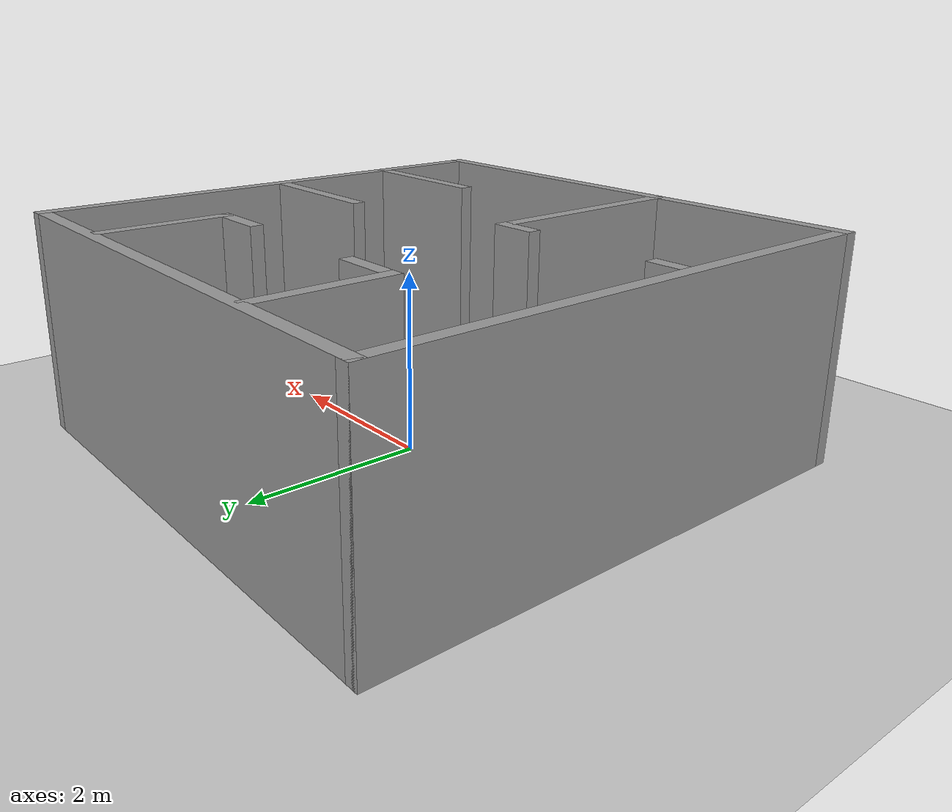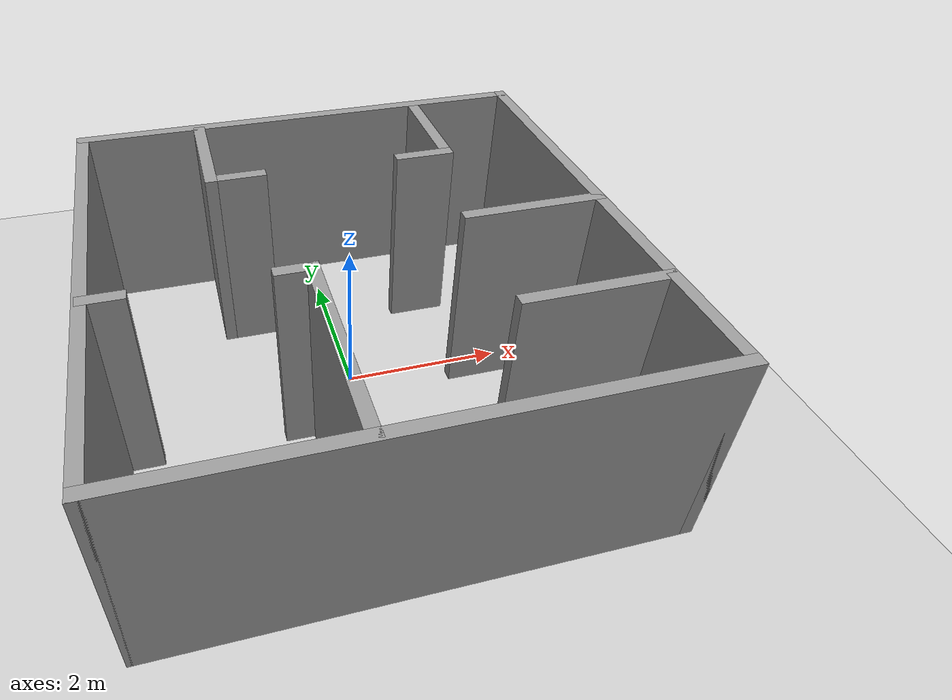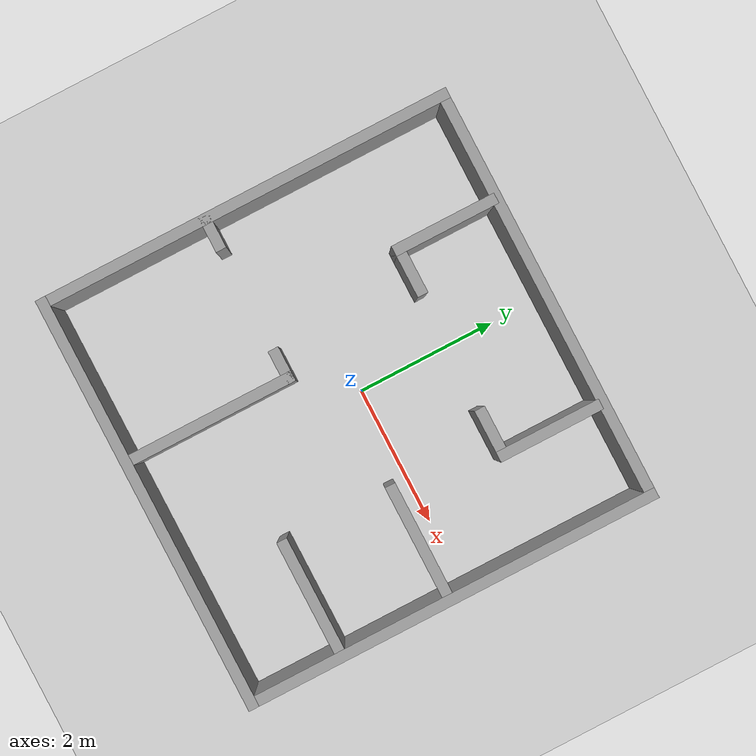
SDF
<sdf version="1.7">
 <world name="default">
  <light name="sun" type="directional">
   <pose>0 0 10 0 -0 0</pose>
   <diffuse>0.8 0.8 0.8 1</diffuse>
   <specular>0.2 0.2 0.2 1</specular>
   <attenuation>
    <range>1000</range>
    <constant>0.9</constant>
    <linear>0.01</linear>
    <quadratic>0.001</quadratic>
   </attenuation>
   <direction>-0.5 0.1 -0.9</direction>
   <spot><inner_angle>0</inner_angle><outer_angle>0</outer_angle><falloff>0</falloff></spot>
  </light>
  <model name="ground_plane">
   <static>1</static>
   <link name="link">
    <collision name="collision">
     <geometry><plane><normal>0 0 1</normal><size>100 100</size></plane></geometry>
     <surface>
      <contact><collide_bitmask>65535</collide_bitmask></contact>
      <friction><ode><mu>100</mu><mu2>50</mu2></ode></friction>
     </surface>
    </collision>
    <visual name="visual">
     <cast_shadows>0</cast_shadows>
     <geometry><plane><normal>0 0 1</normal><size>100 100</size></plane></geometry>
     <material>
      <script><uri>file://media/materials/scripts/gazebo.material</uri><name>Gazebo/Grey</name></script>
     </material>
    </visual>
   </link>
  </model>
  <gravity>0 0 -9.8</gravity>
  <magnetic_field>6e-06 2.3e-05 -4.2e-05</magnetic_field>
  <atmosphere type="adiabatic"/>
  <physics type="ode">
   <max_step_size>0.001</max_step_size>
   <real_time_factor>1</real_time_factor>
   <real_time_update_rate>1000</real_time_update_rate>
  </physics>
  <scene><ambient>0.4 0.4 0.4 1</ambient><background>0.7 0.7 0.7 1</background><shadows>1</shadows></scene>
  <spherical_coordinates>
   <surface_model>EARTH_WGS84</surface_model>
   <latitude_deg>0</latitude_deg>
   <longitude_deg>0</longitude_deg>
   <elevation>0</elevation>
   <heading_deg>0</heading_deg>
  </spherical_coordinates>
  <model name="meze7">
   <pose>0.01284 -0.226206 0 0 -0 0</pose>
   <link name="Wall_0">
    <collision name="Wall_0_Collision">
     <geometry><box><size>6 0.15 2.5</size></box></geometry>
     <pose>0 0 1.25 0 -0 0</pose>
    </collision>
    <visual name="Wall_0_Visual">
     <pose>0 0 1.25 0 -0 0</pose>
     <geometry><box><size>6 0.15 2.5</size></box></geometry>
     <material>
      <script><uri>file://media/materials/scripts/gazebo.material</uri><name>Gazebo/Grey</name></script>
      <ambient>1 1 1 1</ambient>
     </material>
     <meta><layer>0</layer></meta>
    </visual>
    <pose>0 -2.925 0 0 -0 0</pose>
   </link>
   <link name="Wall_1">
    <collision name="Wall_1_Collision">
     <geometry><box><size>6 0.15 2.5</size></box></geometry>
     <pose>0 0 1.25 0 -0 0</pose>
    </collision>
    <visual name="Wall_1_Visual">
     <pose>0 0 1.25 0 -0 0</pose>
     <geometry><box><size>6 0.15 2.5</size></box></geometry>
     <material>
      <script><uri>file://media/materials/scripts/gazebo.material</uri><name>Gazebo/Grey</name></script>
      <ambient>1 1 1 1</ambient>
     </material>
     <meta><layer>0</layer></meta>
    </visual>
    <pose>2.925 0 0 0 -0 1.5708</pose>
   </link>
   <link name="Wall_11">
    <collision name="Wall_11_Collision">
     <geometry><box><size>1.75 0.15 2.5</size></box></geometry>
     <pose>0 0 1.25 0 -0 0</pose>
    </collision>
    <visual name="Wall_11_Visual">
     <pose>0 0 1.25 0 -0 0</pose>
     <geometry><box><size>1.75 0.15 2.5</size></box></geometry>
     <material>
      <script><uri>file://media/materials/scripts/gazebo.material</uri><name>Gazebo/Grey</name></script>
      <ambient>1 1 1 1</ambient>
     </material>
     <meta><layer>0</layer></meta>
    </visual>
    <pose>2.11768 -0.023746 0 0 -0 0</pose>
   </link>
   <link name="Wall_13">
    <collision name="Wall_13_Collision">
     <geometry><box><size>1.75 0.15 2.5</size></box></geometry>
     <pose>0 0 1.25 0 -0 0</pose>
    </collision>
    <visual name="Wall_13_Visual">
     <pose>0 0 1.25 0 -0 0</pose>
     <geometry><box><size>1.75 0.15 2.5</size></box></geometry>
     <material>
      <script><uri>file://media/materials/scripts/gazebo.material</uri><name>Gazebo/Grey</name></script>
      <ambient>1 1 1 1</ambient>
     </material>
     <meta><layer>0</layer></meta>
    </visual>
    <pose>2.10348 -1.60106 0 0 -0 0</pose>
   </link>
   <link name="Wall_16">
    <collision name="Wall_16_Collision">
     <geometry><box><size>1.5 0.15 2.5</size></box></geometry>
     <pose>0 0 1.25 0 -0 0</pose>
    </collision>
    <visual name="Wall_16_Visual">
     <pose>0 0 1.25 0 -0 0</pose>
     <geometry><box><size>1.5 0.15 2.5</size></box></geometry>
     <material>
      <script><uri>file://media/materials/scripts/gazebo.material</uri><name>Gazebo/Grey</name></script>
      <ambient>1 1 1 1</ambient>
     </material>
     <meta><layer>0</layer></meta>
    </visual>
    <pose>-1.42131 2.17221 0 0 -0 -1.5708</pose>
   </link>
   <link name="Wall_18">
    <collision name="Wall_18_Collision">
     <geometry><box><size>1.5 0.15 2.5</size></box></geometry>
     <pose>0 0 1.25 0 -0 0</pose>
    </collision>
    <visual name="Wall_18_Visual">
     <pose>0 0 1.25 0 -0 0</pose>
     <geometry><box><size>1.5 0.15 2.5</size></box></geometry>
     <material>
      <script><uri>file://media/materials/scripts/gazebo.material</uri><name>Gazebo/Grey</name></script>
      <ambient>1 1 1 1</ambient>
     </material>
     <meta><layer>0</layer></meta>
    </visual>
    <pose>1.57336 2.14086 0 0 -0 -1.5708</pose>
   </link>
   <link name="Wall_20">
    <collision name="Wall_20_Collision">
     <geometry><box><size>0.75 0.15 2.5</size></box></geometry>
     <pose>0 0 1.25 0 -0 0</pose>
    </collision>
    <visual name="Wall_20_Visual">
     <pose>0 0 1.25 0 -0 0</pose>
     <geometry><box><size>0.75 0.15 2.5</size></box></geometry>
     <material>
      <script><uri>file://media/materials/scripts/gazebo.material</uri><name>Gazebo/Grey</name></script>
      <ambient>1 1 1 1</ambient>
     </material>
     <meta><layer>0</layer></meta>
    </visual>
    <pose>-1.12131 1.49721 0 0 -0 0</pose>
   </link>
   <link name="Wall_22">
    <collision name="Wall_22_Collision">
     <geometry><box><size>0.75 0.15 2.5</size></box></geometry>
     <pose>0 0 1.25 0 -0 0</pose>
    </collision>
    <visual name="Wall_22_Visual">
     <pose>0 0 1.25 0 -0 0</pose>
     <geometry><box><size>0.75 0.15 2.5</size></box></geometry>
     <material>
      <script><uri>file://media/materials/scripts/gazebo.material</uri><name>Gazebo/Grey</name></script>
      <ambient>1 1 1 1</ambient>
     </material>
     <meta><layer>0</layer></meta>
    </visual>
    <pose>1.27336 1.46586 0 0 -0 3.14159</pose>
   </link>
   <link name="Wall_3">
    <collision name="Wall_3_Collision">
     <geometry><box><size>6 0.15 2.5</size></box></geometry>
     <pose>0 0 1.25 0 -0 0</pose>
    </collision>
    <visual name="Wall_3_Visual">
     <pose>0 0 1.25 0 -0 0</pose>
     <geometry><box><size>6 0.15 2.5</size></box></geometry>
     <material>
      <script><uri>file://media/materials/scripts/gazebo.material</uri><name>Gazebo/Grey</name></script>
      <ambient>1 1 1 1</ambient>
     </material>
     <meta><layer>0</layer></meta>
    </visual>
    <pose>-2.925 0 0 0 -0 1.5708</pose>
   </link>
   <link name="Wall_4">
    <collision name="Wall_4_Collision">
     <geometry><box><size>6 0.15 2.5</size></box></geometry>
     <pose>0 0 1.25 0 -0 0</pose>
    </collision>
    <visual name="Wall_4_Visual">
     <pose>0 0 1.25 0 -0 0</pose>
     <geometry><box><size>6 0.15 2.5</size></box></geometry>
     <material>
      <script><uri>file://media/materials/scripts/gazebo.material</uri><name>Gazebo/Grey</name></script>
      <ambient>1 1 1 1</ambient>
     </material>
     <meta><layer>0</layer></meta>
    </visual>
    <pose>0 2.925 0 0 -0 0</pose>
   </link>
   <link name="Wall_6">
    <collision name="Wall_6_Collision">
     <geometry><box><size>0.5 0.15 2.5</size></box></geometry>
     <pose>0 0 1.25 0 -0 0</pose>
    </collision>
    <visual name="Wall_6_Visual">
     <pose>0 0 1.25 0 -0 0</pose>
     <geometry><box><size>0.5 0.15 2.5</size></box></geometry>
     <material>
      <script><uri>file://media/materials/scripts/gazebo.material</uri><name>Gazebo/Grey</name></script>
      <ambient>1 1 1 1</ambient>
     </material>
     <meta><layer>0</layer></meta>
    </visual>
    <pose>-2.72342 -0.552459 0 0 -0 0</pose>
   </link>
   <link name="Wall_8">
    <collision name="Wall_8_Collision">
     <geometry><box><size>0.5 0.15 2.5</size></box></geometry>
     <pose>0 0 1.25 0 -0 0</pose>
    </collision>
    <visual name="Wall_8_Visual">
     <pose>0 0 1.25 0 -0 0</pose>
     <geometry><box><size>0.5 0.15 2.5</size></box></geometry>
     <material>
      <script><uri>file://media/materials/scripts/gazebo.material</uri><name>Gazebo/Grey</name></script>
      <ambient>1 1 1 1</ambient>
     </material>
     <meta><layer>0</layer></meta>
    </visual>
    <pose>-0.773421 -0.552459 0 0 -0 0</pose>
   </link>
   <link name="Wall_9">
    <collision name="Wall_9_Collision">
     <geometry><box><size>2.5 0.15 2.5</size></box></geometry>
     <pose>0 0 1.25 0 -0 0</pose>
    </collision>
    <visual name="Wall_9_Visual">
     <pose>0 0 1.25 0 -0 0</pose>
     <geometry><box><size>2.5 0.15 2.5</size></box></geometry>
     <material>
      <script><uri>file://media/materials/scripts/gazebo.material</uri><name>Gazebo/Grey</name></script>
      <ambient>1 1 1 1</ambient>
     </material>
     <meta><layer>0</layer></meta>
    </visual>
    <pose>-0.598421 -1.72746 0 0 -0 -1.5708</pose>
   </link>
   <static>1</static>
  </model>
 </world>
</sdf>
